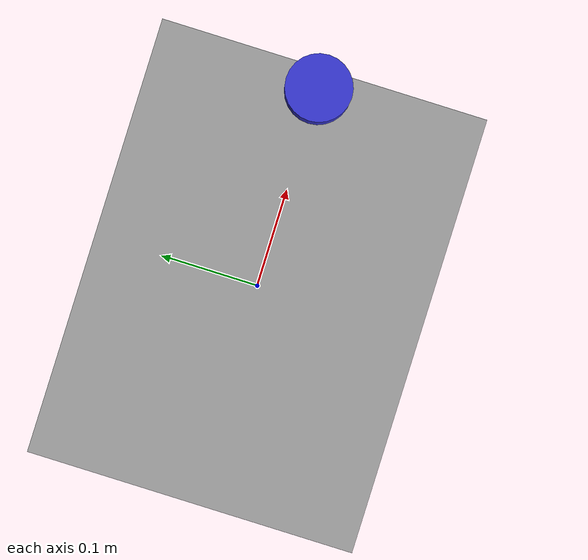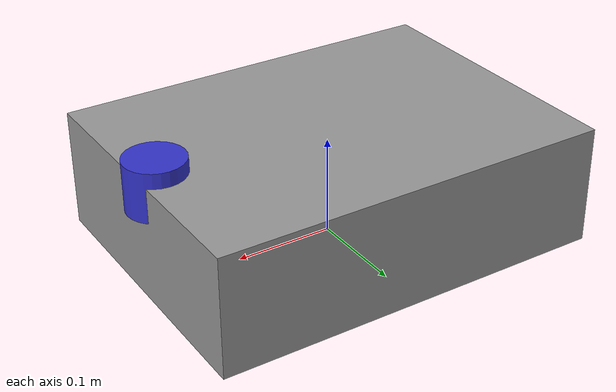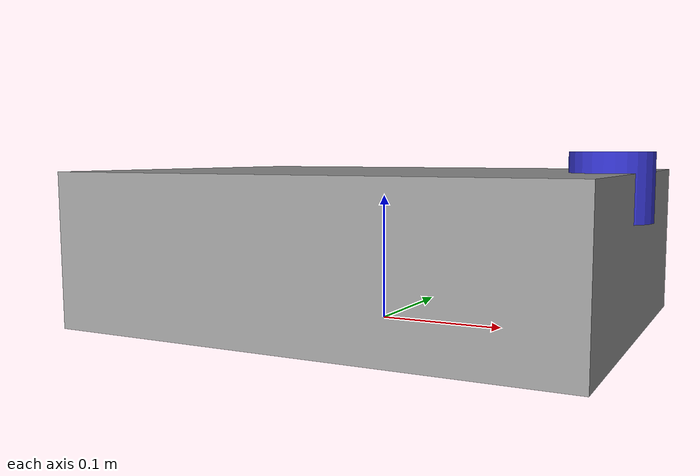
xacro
<?xml version="1.0"?>
<robot name="agv" xmlns:xacro="http://www.ros.org/wiki/xacro">

  <!-- Base dimensions (meter) -->
  <xacro:property name="base_length" value="0.40"/>
  <xacro:property name="base_width"  value="0.30"/>
  <xacro:property name="base_height" value="0.12"/>

  <material name="grey"><color rgba="0.6 0.6 0.6 1"/></material>
  <material name="black"><color rgba="0.1 0.1 0.1 1"/></material>
  <material name="blue"><color rgba="0.2 0.2 0.8 1"/></material>

  <!-- base_footprint (root, no inertia) -->
  <link name="base_footprint"/>

  <joint name="base_footprint_to_base_link" type="fixed">
    <parent link="base_footprint"/>
    <child link="base_link"/>
    <origin xyz="0 0 0" rpy="0 0 0"/>
  </joint>

  <!-- base_link -->
  <link name="base_link">
    <visual>
      <origin xyz="0 0 ${base_height/2}" rpy="0 0 0"/>
      <geometry>
        <box size="${base_length} ${base_width} ${base_height}"/>
      </geometry>
      <material name="grey"/>
    </visual>

    <collision>
      <origin xyz="0 0 ${base_height/2}" rpy="0 0 0"/>
      <geometry>
        <box size="${base_length} ${base_width} ${base_height}"/>
      </geometry>
    </collision>

    <inertial>
      <origin xyz="0 0 ${base_height/2}" rpy="0 0 0"/>
      <mass value="5.0"/>
      <inertia ixx="0.10" ixy="0.0" ixz="0.0" iyy="0.10" iyz="0.0" izz="0.10"/>
    </inertial>
  </link>

  <!-- LiDAR frame -->
  <link name="laser">
    <visual>
      <origin xyz="0 0 0" rpy="0 0 0"/>
      <geometry>
        <cylinder radius="0.03" length="0.05"/>
      </geometry>
      <material name="blue"/>
    </visual>
  </link>

  <joint name="base_to_laser" type="fixed">
    <parent link="base_link"/>
    <child link="laser"/>
    <origin xyz="0.18 0.0 0.11" rpy="0 0 0"/>
  </joint>

  <!-- IMU frame -->
  <link name="imu_link">
    <visual>
      <origin xyz="0 0 0" rpy="0 0 0"/>
      <geometry>
        <box size="0.03 0.03 0.01"/>
      </geometry>
      <material name="black"/>
    </visual>
  </link>

  <joint name="base_to_imu" type="fixed">
    <parent link="base_link"/>
    <child link="imu_link"/>
    <origin xyz="0.0 0.0 0.10" rpy="0 0 0"/>
  </joint>

</robot>
